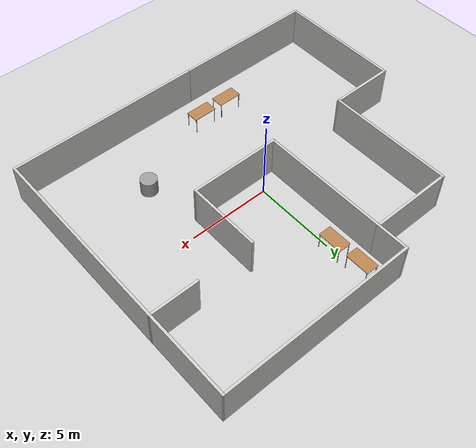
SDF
<sdf version="1.7">
 <world name="map1">
  <light name="sun" type="directional">
   <pose>0 0 10 0 -0 0</pose>
   <diffuse>0.8 0.8 0.8 1</diffuse>
   <specular>0.2 0.2 0.2 1</specular>
   <attenuation>
    <range>1000</range>
    <constant>0.9</constant>
    <linear>0.01</linear>
    <quadratic>0.001</quadratic>
   </attenuation>
   <direction>-0.5 0.1 -0.9</direction>
   <spot><inner_angle>0</inner_angle><outer_angle>0</outer_angle><falloff>0</falloff></spot>
  </light>
  <model name="ground_plane">
   <static>1</static>
   <link name="link">
    <collision name="collision">
     <geometry><plane><normal>0 0 1</normal><size>100 100</size></plane></geometry>
     <surface><friction><ode><mu>100</mu><mu2>50</mu2></ode></friction></surface>
    </collision>
    <visual name="visual">
     <cast_shadows>0</cast_shadows>
     <geometry><plane><normal>0 0 1</normal><size>100 100</size></plane></geometry>
     <material>
      <script><uri>file://media/materials/scripts/gazebo.material</uri><name>Gazebo/Grey</name></script>
     </material>
    </visual>
   </link>
  </model>
  <gravity>0 0 -9.8</gravity>
  <magnetic_field>6e-06 2.3e-05 -4.2e-05</magnetic_field>
  <atmosphere type="adiabatic"/>
  <physics type="ode">
   <max_step_size>0.001</max_step_size>
   <real_time_factor>1</real_time_factor>
   <real_time_update_rate>1000</real_time_update_rate>
  </physics>
  <scene><ambient>0.4 0.4 0.4 1</ambient><background>0.7 0.7 0.7 1</background><shadows>1</shadows></scene>
  <spherical_coordinates>
   <surface_model>EARTH_WGS84</surface_model>
   <latitude_deg>0</latitude_deg>
   <longitude_deg>0</longitude_deg>
   <elevation>0</elevation>
   <heading_deg>0</heading_deg>
  </spherical_coordinates>
  <model name="map1">
   <pose>0.068623 0.207395 0 0 -0 0</pose>
   <link name="Wall_17">
    <collision name="Wall_17_Collision">
     <geometry><box><size>12 0.15 2.5</size></box></geometry>
     <pose>0 0 1.25 0 -0 0</pose>
    </collision>
    <visual name="Wall_17_Visual">
     <pose>0 0 1.25 0 -0 0</pose>
     <geometry><box><size>12 0.15 2.5</size></box></geometry>
     <material>
      <script><uri>file://media/materials/scripts/gazebo.material</uri><name>Gazebo/CeilingTiled</name></script>
      <ambient>0.435294 0.796078 0.67451 1</ambient>
     </material>
     <meta><layer>0</layer></meta>
    </visual>
    <pose>4.42491 -8.52904 0 0 -0 0</pose>
   </link>
   <link name="Wall_18">
    <collision name="Wall_18_Collision">
     <geometry><box><size>12 0.15 2.5</size></box></geometry>
     <pose>0 0 1.25 0 -0 0</pose>
    </collision>
    <visual name="Wall_18_Visual">
     <pose>0 0 1.25 0 -0 0</pose>
     <geometry><box><size>12 0.15 2.5</size></box></geometry>
     <material>
      <script><uri>file://media/materials/scripts/gazebo.material</uri><name>Gazebo/CeilingTiled</name></script>
      <ambient>0.435294 0.796078 0.67451 1</ambient>
     </material>
     <meta><layer>0</layer></meta>
    </visual>
    <pose>10.3499 -2.60404 0 0 -0 1.5708</pose>
   </link>
   <link name="Wall_20">
    <collision name="Wall_20_Collision">
     <geometry><box><size>4.54601 0.15 2.5</size></box></geometry>
     <pose>0 0 1.25 0 -0 0</pose>
    </collision>
    <visual name="Wall_20_Visual">
     <pose>0 0 1.25 0 -0 0</pose>
     <geometry><box><size>4.54601 0.15 2.5</size></box></geometry>
     <material>
      <script><uri>file://media/materials/scripts/gazebo.material</uri><name>Gazebo/CeilingTiled</name></script>
      <ambient>0.435294 0.796078 0.67451 1</ambient>
     </material>
     <meta><layer>0</layer></meta>
    </visual>
    <pose>4.00566 1.12296 0 0 -0 -1.56818</pose>
   </link>
   <link name="Wall_21">
    <collision name="Wall_21_Collision">
     <geometry><box><size>5.67396 0.15 2.5</size></box></geometry>
     <pose>0 0 1.25 0 -0 0</pose>
    </collision>
    <visual name="Wall_21_Visual">
     <pose>0 0 1.25 0 -0 0</pose>
     <geometry><box><size>5.67396 0.15 2.5</size></box></geometry>
     <material>
      <script><uri>file://media/materials/scripts/gazebo.material</uri><name>Gazebo/CeilingTiled</name></script>
      <ambient>0.435294 0.796078 0.67451 1</ambient>
     </material>
     <meta><layer>0</layer></meta>
    </visual>
    <pose>1.24943 -1.06734 0 0 -0 -3.14022</pose>
   </link>
   <link name="Wall_28">
    <collision name="Wall_28_Collision">
     <geometry><box><size>9 0.15 2.5</size></box></geometry>
     <pose>0 0 1.25 0 -0 0</pose>
    </collision>
    <visual name="Wall_28_Visual">
     <pose>0 0 1.25 0 -0 0</pose>
     <geometry><box><size>9 0.15 2.5</size></box></geometry>
     <material>
      <script><uri>file://media/materials/scripts/gazebo.material</uri><name>Gazebo/CeilingTiled</name></script>
      <ambient>0.435294 0.796078 0.67451 1</ambient>
     </material>
     <meta><layer>0</layer></meta>
    </visual>
    <pose>-5.92509 -8.52904 0 0 -0 3.14159</pose>
   </link>
   <link name="Wall_29">
    <collision name="Wall_29_Collision">
     <geometry><box><size>7.75 0.15 2.5</size></box></geometry>
     <pose>0 0 1.25 0 -0 0</pose>
    </collision>
    <visual name="Wall_29_Visual">
     <pose>0 0 1.25 0 -0 0</pose>
     <geometry><box><size>7.75 0.15 2.5</size></box></geometry>
     <material>
      <script><uri>file://media/materials/scripts/gazebo.material</uri><name>Gazebo/CeilingTiled</name></script>
      <ambient>0.435294 0.796078 0.67451 1</ambient>
     </material>
     <meta><layer>0</layer></meta>
    </visual>
    <pose>-10.3501 -4.72904 0 0 -0 1.5708</pose>
   </link>
   <link name="Wall_30">
    <collision name="Wall_30_Collision">
     <geometry><box><size>4 0.15 2.5</size></box></geometry>
     <pose>0 0 1.25 0 -0 0</pose>
    </collision>
    <visual name="Wall_30_Visual">
     <pose>0 0 1.25 0 -0 0</pose>
     <geometry><box><size>4 0.15 2.5</size></box></geometry>
     <material>
      <script><uri>file://media/materials/scripts/gazebo.material</uri><name>Gazebo/CeilingTiled</name></script>
      <ambient>0.435294 0.796078 0.67451 1</ambient>
     </material>
     <meta><layer>0</layer></meta>
    </visual>
    <pose>-8.42509 -0.929037 0 0 -0 0</pose>
   </link>
   <link name="Wall_31">
    <collision name="Wall_31_Collision">
     <geometry><box><size>7.75772 0.15 2.5</size></box></geometry>
     <pose>0 0 1.25 0 -0 0</pose>
    </collision>
    <visual name="Wall_31_Visual">
     <pose>0 0 1.25 0 -0 0</pose>
     <geometry><box><size>7.75772 0.15 2.5</size></box></geometry>
     <material>
      <script><uri>file://media/materials/scripts/gazebo.material</uri><name>Gazebo/CeilingTiled</name></script>
      <ambient>0.435294 0.796078 0.67451 1</ambient>
     </material>
     <meta><layer>0</layer></meta>
    </visual>
    <pose>-6.49442 2.87474 0 0 -0 1.5693</pose>
   </link>
   <link name="Wall_32">
    <collision name="Wall_32_Collision">
     <geometry><box><size>5.1 0.15 2.5</size></box></geometry>
     <pose>0 0 1.25 0 -0 0</pose>
    </collision>
    <visual name="Wall_32_Visual">
     <pose>0 0 1.25 0 -0 0</pose>
     <geometry><box><size>5.1 0.15 2.5</size></box></geometry>
     <material>
      <script><uri>file://media/materials/scripts/gazebo.material</uri><name>Gazebo/CeilingTiled</name></script>
      <ambient>0.435294 0.796078 0.67451 1</ambient>
     </material>
     <meta><layer>0</layer></meta>
    </visual>
    <pose>-4.01375 6.67852 0 0 -0 0</pose>
   </link>
   <link name="Wall_34">
    <collision name="Wall_34_Collision">
     <geometry><box><size>7.9 0.15 2.5</size></box></geometry>
     <pose>0 0 1.25 0 -0 0</pose>
    </collision>
    <visual name="Wall_34_Visual">
     <pose>0 0 1.25 0 -0 0</pose>
     <geometry><box><size>7.9 0.15 2.5</size></box></geometry>
     <material>
      <script><uri>file://media/materials/scripts/gazebo.material</uri><name>Gazebo/CeilingTiled</name></script>
      <ambient>0.435294 0.796078 0.67451 1</ambient>
     </material>
     <meta><layer>0</layer></meta>
    </visual>
    <pose>-1.51255 2.80386 0 0 -0 1.5708</pose>
   </link>
   <link name="Wall_36">
    <collision name="Wall_36_Collision">
     <geometry><box><size>2 0.15 2.5</size></box></geometry>
     <pose>0 0 1.25 0 -0 0</pose>
    </collision>
    <visual name="Wall_36_Visual">
     <pose>0 0 1.25 0 -0 0</pose>
     <geometry><box><size>2 0.15 2.5</size></box></geometry>
     <material>
      <script><uri>file://media/materials/scripts/gazebo.material</uri><name>Gazebo/CeilingTiled</name></script>
      <ambient>0.435294 0.796078 0.67451 1</ambient>
     </material>
     <meta><layer>0</layer></meta>
    </visual>
    <pose>-1.51255 7.60386 0 0 -0 1.5708</pose>
   </link>
   <link name="Wall_37">
    <collision name="Wall_37_Collision">
     <geometry><box><size>12 0.15 2.5</size></box></geometry>
     <pose>0 0 1.25 0 -0 0</pose>
    </collision>
    <visual name="Wall_37_Visual">
     <pose>0 0 1.25 0 -0 0</pose>
     <geometry><box><size>12 0.15 2.5</size></box></geometry>
     <material>
      <script><uri>file://media/materials/scripts/gazebo.material</uri><name>Gazebo/CeilingTiled</name></script>
      <ambient>0.435294 0.796078 0.67451 1</ambient>
     </material>
     <meta><layer>0</layer></meta>
    </visual>
    <pose>4.41245 8.52886 0 0 -0 0</pose>
   </link>
   <link name="Wall_38">
    <collision name="Wall_38_Collision">
     <geometry><box><size>5.35791 0.15 2.5</size></box></geometry>
     <pose>0 0 1.25 0 -0 0</pose>
    </collision>
    <visual name="Wall_38_Visual">
     <pose>0 0 1.25 0 -0 0</pose>
     <geometry><box><size>5.35791 0.15 2.5</size></box></geometry>
     <material>
      <script><uri>file://media/materials/scripts/gazebo.material</uri><name>Gazebo/CeilingTiled</name></script>
      <ambient>0.435294 0.796078 0.67451 1</ambient>
     </material>
     <meta><layer>0</layer></meta>
    </visual>
    <pose>10.3437 5.92491 0 0 -0 -1.5684</pose>
   </link>
   <link name="Wall_39">
    <collision name="Wall_39_Collision">
     <geometry><box><size>3 0.15 2.5</size></box></geometry>
     <pose>0 0 1.25 0 -0 0</pose>
    </collision>
    <visual name="Wall_39_Visual">
     <pose>0 0 1.25 0 -0 0</pose>
     <geometry><box><size>3 0.15 2.5</size></box></geometry>
     <material>
      <script><uri>file://media/materials/scripts/gazebo.material</uri><name>Gazebo/CeilingTiled</name></script>
      <ambient>0.435294 0.796078 0.67451 1</ambient>
     </material>
     <meta><layer>0</layer></meta>
    </visual>
    <pose>8.92491 3.32096 0 0 -0 3.14159</pose>
   </link>
   <static>1</static>
  </model>
  <model name="bookshelf">
   <static>1</static>
   <link name="link">
    <inertial><mass>1</mass></inertial>
    <collision name="back">
     <pose>0 0.005 0.6 0 -0 0</pose>
     <geometry><box><size>0.9 0.01 1.2</size></box></geometry>
    </collision>
    <visual name="visual1">
     <pose>0 0.005 0.6 0 -0 0</pose>
     <geometry><box><size>0.9 0.01 1.2</size></box></geometry>
     <material>
      <script><uri>file://media/materials/scripts/gazebo.material</uri><name>Gazebo/Wood</name></script>
     </material>
    </visual>
    <collision name="left_side">
     <pose>0.45 -0.195 0.6 0 -0 0</pose>
     <geometry><box><size>0.02 0.4 1.2</size></box></geometry>
    </collision>
    <visual name="visual2">
     <pose>0.45 -0.195 0.6 0 -0 0</pose>
     <geometry><box><size>0.02 0.4 1.2</size></box></geometry>
     <material>
      <script><uri>file://media/materials/scripts/gazebo.material</uri><name>Gazebo/Wood</name></script>
     </material>
    </visual>
    <collision name="right_side">
     <pose>-0.45 -0.195 0.6 0 -0 0</pose>
     <geometry><box><size>0.02 0.4 1.2</size></box></geometry>
    </collision>
    <visual name="visual3">
     <pose>-0.45 -0.195 0.6 0 -0 0</pose>
     <geometry><box><size>0.02 0.4 1.2</size></box></geometry>
     <material>
      <script><uri>file://media/materials/scripts/gazebo.material</uri><name>Gazebo/Wood</name></script>
     </material>
    </visual>
    <collision name="bottom">
     <pose>0 -0.195 0.03 0 -0 0</pose>
     <geometry><box><size>0.88 0.4 0.06</size></box></geometry>
    </collision>
    <visual name="visual4">
     <pose>0 -0.195 0.03 0 -0 0</pose>
     <geometry><box><size>0.88 0.4 0.06</size></box></geometry>
     <material>
      <script><uri>file://media/materials/scripts/gazebo.material</uri><name>Gazebo/Wood</name></script>
     </material>
    </visual>
    <collision name="top">
     <pose>0 -0.195 1.19 0 -0 0</pose>
     <geometry><box><size>0.88 0.4 0.02</size></box></geometry>
    </collision>
    <visual name="visual5">
     <pose>0 -0.195 1.19 0 -0 0</pose>
     <geometry><box><size>0.88 0.4 0.02</size></box></geometry>
     <material>
      <script><uri>file://media/materials/scripts/gazebo.material</uri><name>Gazebo/Wood</name></script>
     </material>
    </visual>
    <collision name="low_shelf">
     <pose>0 -0.195 0.43 0 -0 0</pose>
     <geometry><box><size>0.88 0.4 0.02</size></box></geometry>
    </collision>
    <visual name="visual6">
     <pose>0 -0.195 0.43 0 -0 0</pose>
     <geometry><box><size>0.88 0.4 0.02</size></box></geometry>
     <material>
      <script><uri>file://media/materials/scripts/gazebo.material</uri><name>Gazebo/Wood</name></script>
     </material>
    </visual>
    <collision name="high_shelf">
     <pose>0 -0.195 0.8 0 -0 0</pose>
     <geometry><box><size>0.88 0.4 0.02</size></box></geometry>
    </collision>
    <visual name="visual7">
     <pose>0 -0.195 0.8 0 -0 0</pose>
     <geometry><box><size>0.88 0.4 0.02</size></box></geometry>
     <material>
      <script><uri>file://media/materials/scripts/gazebo.material</uri><name>Gazebo/Wood</name></script>
     </material>
    </visual>
   </link>
   <pose>-5.38403 6.82344 0 0 -0 0</pose>
  </model>
  <model name="bookshelf_clone">
   <static>1</static>
   <link name="link">
    <inertial><mass>1</mass></inertial>
    <collision name="back">
     <pose>0 0.005 0.6 0 -0 0</pose>
     <geometry><box><size>0.9 0.01 1.2</size></box></geometry>
    </collision>
    <visual name="visual1">
     <pose>0 0.005 0.6 0 -0 0</pose>
     <geometry><box><size>0.9 0.01 1.2</size></box></geometry>
     <material>
      <script><uri>file://media/materials/scripts/gazebo.material</uri><name>Gazebo/Wood</name></script>
     </material>
    </visual>
    <collision name="left_side">
     <pose>0.45 -0.195 0.6 0 -0 0</pose>
     <geometry><box><size>0.02 0.4 1.2</size></box></geometry>
    </collision>
    <visual name="visual2">
     <pose>0.45 -0.195 0.6 0 -0 0</pose>
     <geometry><box><size>0.02 0.4 1.2</size></box></geometry>
     <material>
      <script><uri>file://media/materials/scripts/gazebo.material</uri><name>Gazebo/Wood</name></script>
     </material>
    </visual>
    <collision name="right_side">
     <pose>-0.45 -0.195 0.6 0 -0 0</pose>
     <geometry><box><size>0.02 0.4 1.2</size></box></geometry>
    </collision>
    <visual name="visual3">
     <pose>-0.45 -0.195 0.6 0 -0 0</pose>
     <geometry><box><size>0.02 0.4 1.2</size></box></geometry>
     <material>
      <script><uri>file://media/materials/scripts/gazebo.material</uri><name>Gazebo/Wood</name></script>
     </material>
    </visual>
    <collision name="bottom">
     <pose>0 -0.195 0.03 0 -0 0</pose>
     <geometry><box><size>0.88 0.4 0.06</size></box></geometry>
    </collision>
    <visual name="visual4">
     <pose>0 -0.195 0.03 0 -0 0</pose>
     <geometry><box><size>0.88 0.4 0.06</size></box></geometry>
     <material>
      <script><uri>file://media/materials/scripts/gazebo.material</uri><name>Gazebo/Wood</name></script>
     </material>
    </visual>
    <collision name="top">
     <pose>0 -0.195 1.19 0 -0 0</pose>
     <geometry><box><size>0.88 0.4 0.02</size></box></geometry>
    </collision>
    <visual name="visual5">
     <pose>0 -0.195 1.19 0 -0 0</pose>
     <geometry><box><size>0.88 0.4 0.02</size></box></geometry>
     <material>
      <script><uri>file://media/materials/scripts/gazebo.material</uri><name>Gazebo/Wood</name></script>
     </material>
    </visual>
    <collision name="low_shelf">
     <pose>0 -0.195 0.43 0 -0 0</pose>
     <geometry><box><size>0.88 0.4 0.02</size></box></geometry>
    </collision>
    <visual name="visual6">
     <pose>0 -0.195 0.43 0 -0 0</pose>
     <geometry><box><size>0.88 0.4 0.02</size></box></geometry>
     <material>
      <script><uri>file://media/materials/scripts/gazebo.material</uri><name>Gazebo/Wood</name></script>
     </material>
    </visual>
    <collision name="high_shelf">
     <pose>0 -0.195 0.8 0 -0 0</pose>
     <geometry><box><size>0.88 0.4 0.02</size></box></geometry>
    </collision>
    <visual name="visual7">
     <pose>0 -0.195 0.8 0 -0 0</pose>
     <geometry><box><size>0.88 0.4 0.02</size></box></geometry>
     <material>
      <script><uri>file://media/materials/scripts/gazebo.material</uri><name>Gazebo/Wood</name></script>
     </material>
    </visual>
   </link>
   <pose>-4.4672 6.81996 0 0 -0 0</pose>
  </model>
  <model name="bookshelf_clone_0">
   <static>1</static>
   <link name="link">
    <inertial><mass>1</mass></inertial>
    <collision name="back">
     <pose>0 0.005 0.6 0 -0 0</pose>
     <geometry><box><size>0.9 0.01 1.2</size></box></geometry>
    </collision>
    <visual name="visual1">
     <pose>0 0.005 0.6 0 -0 0</pose>
     <geometry><box><size>0.9 0.01 1.2</size></box></geometry>
     <material>
      <script><uri>file://media/materials/scripts/gazebo.material</uri><name>Gazebo/Wood</name></script>
     </material>
    </visual>
    <collision name="left_side">
     <pose>0.45 -0.195 0.6 0 -0 0</pose>
     <geometry><box><size>0.02 0.4 1.2</size></box></geometry>
    </collision>
    <visual name="visual2">
     <pose>0.45 -0.195 0.6 0 -0 0</pose>
     <geometry><box><size>0.02 0.4 1.2</size></box></geometry>
     <material>
      <script><uri>file://media/materials/scripts/gazebo.material</uri><name>Gazebo/Wood</name></script>
     </material>
    </visual>
    <collision name="right_side">
     <pose>-0.45 -0.195 0.6 0 -0 0</pose>
     <geometry><box><size>0.02 0.4 1.2</size></box></geometry>
    </collision>
    <visual name="visual3">
     <pose>-0.45 -0.195 0.6 0 -0 0</pose>
     <geometry><box><size>0.02 0.4 1.2</size></box></geometry>
     <material>
      <script><uri>file://media/materials/scripts/gazebo.material</uri><name>Gazebo/Wood</name></script>
     </material>
    </visual>
    <collision name="bottom">
     <pose>0 -0.195 0.03 0 -0 0</pose>
     <geometry><box><size>0.88 0.4 0.06</size></box></geometry>
    </collision>
    <visual name="visual4">
     <pose>0 -0.195 0.03 0 -0 0</pose>
     <geometry><box><size>0.88 0.4 0.06</size></box></geometry>
     <material>
      <script><uri>file://media/materials/scripts/gazebo.material</uri><name>Gazebo/Wood</name></script>
     </material>
    </visual>
    <collision name="top">
     <pose>0 -0.195 1.19 0 -0 0</pose>
     <geometry><box><size>0.88 0.4 0.02</size></box></geometry>
    </collision>
    <visual name="visual5">
     <pose>0 -0.195 1.19 0 -0 0</pose>
     <geometry><box><size>0.88 0.4 0.02</size></box></geometry>
     <material>
      <script><uri>file://media/materials/scripts/gazebo.material</uri><name>Gazebo/Wood</name></script>
     </material>
    </visual>
    <collision name="low_shelf">
     <pose>0 -0.195 0.43 0 -0 0</pose>
     <geometry><box><size>0.88 0.4 0.02</size></box></geometry>
    </collision>
    <visual name="visual6">
     <pose>0 -0.195 0.43 0 -0 0</pose>
     <geometry><box><size>0.88 0.4 0.02</size></box></geometry>
     <material>
      <script><uri>file://media/materials/scripts/gazebo.material</uri><name>Gazebo/Wood</name></script>
     </material>
    </visual>
    <collision name="high_shelf">
     <pose>0 -0.195 0.8 0 -0 0</pose>
     <geometry><box><size>0.88 0.4 0.02</size></box></geometry>
    </collision>
    <visual name="visual7">
     <pose>0 -0.195 0.8 0 -0 0</pose>
     <geometry><box><size>0.88 0.4 0.02</size></box></geometry>
     <material>
      <script><uri>file://media/materials/scripts/gazebo.material</uri><name>Gazebo/Wood</name></script>
     </material>
    </visual>
   </link>
   <pose>-3.62588 6.82278 0 0 -0 0</pose>
  </model>
  <model name="table">
   <static>1</static>
   <link name="link">
    <collision name="surface">
     <pose>0 0 1 0 -0 0</pose>
     <geometry><box><size>1.5 0.8 0.03</size></box></geometry>
     <surface><friction><ode><mu>0.6</mu><mu2>0.6</mu2></ode></friction></surface>
    </collision>
    <visual name="visual1">
     <pose>0 0 1 0 -0 0</pose>
     <geometry><box><size>1.5 0.8 0.03</size></box></geometry>
     <material>
      <script><uri>file://media/materials/scripts/gazebo.material</uri><name>Gazebo/Wood</name></script>
     </material>
    </visual>
    <collision name="front_left_leg">
     <pose>0.68 0.38 0.5 0 -0 0</pose>
     <geometry><cylinder><radius>0.02</radius><length>1</length></cylinder></geometry>
    </collision>
    <visual name="front_left_leg">
     <pose>0.68 0.38 0.5 0 -0 0</pose>
     <geometry><cylinder><radius>0.02</radius><length>1</length></cylinder></geometry>
     <material>
      <script><uri>file://media/materials/scripts/gazebo.material</uri><name>Gazebo/Grey</name></script>
     </material>
    </visual>
    <collision name="front_right_leg">
     <pose>0.68 -0.38 0.5 0 -0 0</pose>
     <geometry><cylinder><radius>0.02</radius><length>1</length></cylinder></geometry>
    </collision>
    <visual name="front_right_leg">
     <pose>0.68 -0.38 0.5 0 -0 0</pose>
     <geometry><cylinder><radius>0.02</radius><length>1</length></cylinder></geometry>
     <material>
      <script><uri>file://media/materials/scripts/gazebo.material</uri><name>Gazebo/Grey</name></script>
     </material>
    </visual>
    <collision name="back_right_leg">
     <pose>-0.68 -0.38 0.5 0 -0 0</pose>
     <geometry><cylinder><radius>0.02</radius><length>1</length></cylinder></geometry>
    </collision>
    <visual name="back_right_leg">
     <pose>-0.68 -0.38 0.5 0 -0 0</pose>
     <geometry><cylinder><radius>0.02</radius><length>1</length></cylinder></geometry>
     <material>
      <script><uri>file://media/materials/scripts/gazebo.material</uri><name>Gazebo/Grey</name></script>
     </material>
    </visual>
    <collision name="back_left_leg">
     <pose>-0.68 0.38 0.5 0 -0 0</pose>
     <geometry><cylinder><radius>0.02</radius><length>1</length></cylinder></geometry>
    </collision>
    <visual name="back_left_leg">
     <pose>-0.68 0.38 0.5 0 -0 0</pose>
     <geometry><cylinder><radius>0.02</radius><length>1</length></cylinder></geometry>
     <material>
      <script><uri>file://media/materials/scripts/gazebo.material</uri><name>Gazebo/Grey</name></script>
     </material>
    </visual>
   </link>
   <pose>-0.126599 7.24532 0 0 0 -1.57065</pose>
  </model>
  <model name="table_clone">
   <static>1</static>
   <link name="link">
    <collision name="surface">
     <pose>0 0 1 0 -0 0</pose>
     <geometry><box><size>1.5 0.8 0.03</size></box></geometry>
     <surface><friction><ode><mu>0.6</mu><mu2>0.6</mu2></ode></friction></surface>
    </collision>
    <visual name="visual1">
     <pose>0 0 1 0 -0 0</pose>
     <geometry><box><size>1.5 0.8 0.03</size></box></geometry>
     <material>
      <script><uri>file://media/materials/scripts/gazebo.material</uri><name>Gazebo/Wood</name></script>
     </material>
    </visual>
    <collision name="front_left_leg">
     <pose>0.68 0.38 0.5 0 -0 0</pose>
     <geometry><cylinder><radius>0.02</radius><length>1</length></cylinder></geometry>
    </collision>
    <visual name="front_left_leg">
     <pose>0.68 0.38 0.5 0 -0 0</pose>
     <geometry><cylinder><radius>0.02</radius><length>1</length></cylinder></geometry>
     <material>
      <script><uri>file://media/materials/scripts/gazebo.material</uri><name>Gazebo/Grey</name></script>
     </material>
    </visual>
    <collision name="front_right_leg">
     <pose>0.68 -0.38 0.5 0 -0 0</pose>
     <geometry><cylinder><radius>0.02</radius><length>1</length></cylinder></geometry>
    </collision>
    <visual name="front_right_leg">
     <pose>0.68 -0.38 0.5 0 -0 0</pose>
     <geometry><cylinder><radius>0.02</radius><length>1</length></cylinder></geometry>
     <material>
      <script><uri>file://media/materials/scripts/gazebo.material</uri><name>Gazebo/Grey</name></script>
     </material>
    </visual>
    <collision name="back_right_leg">
     <pose>-0.68 -0.38 0.5 0 -0 0</pose>
     <geometry><cylinder><radius>0.02</radius><length>1</length></cylinder></geometry>
    </collision>
    <visual name="back_right_leg">
     <pose>-0.68 -0.38 0.5 0 -0 0</pose>
     <geometry><cylinder><radius>0.02</radius><length>1</length></cylinder></geometry>
     <material>
      <script><uri>file://media/materials/scripts/gazebo.material</uri><name>Gazebo/Grey</name></script>
     </material>
    </visual>
    <collision name="back_left_leg">
     <pose>-0.68 0.38 0.5 0 -0 0</pose>
     <geometry><cylinder><radius>0.02</radius><length>1</length></cylinder></geometry>
    </collision>
    <visual name="back_left_leg">
     <pose>-0.68 0.38 0.5 0 -0 0</pose>
     <geometry><cylinder><radius>0.02</radius><length>1</length></cylinder></geometry>
     <material>
      <script><uri>file://media/materials/scripts/gazebo.material</uri><name>Gazebo/Grey</name></script>
     </material>
    </visual>
   </link>
   <pose>-0.046616 5.3871 0 0 0 -1.57065</pose>
  </model>
  <model name="table_clone_clone">
   <static>1</static>
   <link name="link">
    <collision name="surface">
     <pose>0 0 1 0 -0 0</pose>
     <geometry><box><size>1.5 0.8 0.03</size></box></geometry>
     <surface><friction><ode><mu>0.6</mu><mu2>0.6</mu2></ode></friction></surface>
    </collision>
    <visual name="visual1">
     <pose>0 0 1 0 -0 0</pose>
     <geometry><box><size>1.5 0.8 0.03</size></box></geometry>
     <material>
      <script><uri>file://media/materials/scripts/gazebo.material</uri><name>Gazebo/Wood</name></script>
     </material>
    </visual>
    <collision name="front_left_leg">
     <pose>0.68 0.38 0.5 0 -0 0</pose>
     <geometry><cylinder><radius>0.02</radius><length>1</length></cylinder></geometry>
    </collision>
    <visual name="front_left_leg">
     <pose>0.68 0.38 0.5 0 -0 0</pose>
     <geometry><cylinder><radius>0.02</radius><length>1</length></cylinder></geometry>
     <material>
      <script><uri>file://media/materials/scripts/gazebo.material</uri><name>Gazebo/Grey</name></script>
     </material>
    </visual>
    <collision name="front_right_leg">
     <pose>0.68 -0.38 0.5 0 -0 0</pose>
     <geometry><cylinder><radius>0.02</radius><length>1</length></cylinder></geometry>
    </collision>
    <visual name="front_right_leg">
     <pose>0.68 -0.38 0.5 0 -0 0</pose>
     <geometry><cylinder><radius>0.02</radius><length>1</length></cylinder></geometry>
     <material>
      <script><uri>file://media/materials/scripts/gazebo.material</uri><name>Gazebo/Grey</name></script>
     </material>
    </visual>
    <collision name="back_right_leg">
     <pose>-0.68 -0.38 0.5 0 -0 0</pose>
     <geometry><cylinder><radius>0.02</radius><length>1</length></cylinder></geometry>
    </collision>
    <visual name="back_right_leg">
     <pose>-0.68 -0.38 0.5 0 -0 0</pose>
     <geometry><cylinder><radius>0.02</radius><length>1</length></cylinder></geometry>
     <material>
      <script><uri>file://media/materials/scripts/gazebo.material</uri><name>Gazebo/Grey</name></script>
     </material>
    </visual>
    <collision name="back_left_leg">
     <pose>-0.68 0.38 0.5 0 -0 0</pose>
     <geometry><cylinder><radius>0.02</radius><length>1</length></cylinder></geometry>
    </collision>
    <visual name="back_left_leg">
     <pose>-0.68 0.38 0.5 0 -0 0</pose>
     <geometry><cylinder><radius>0.02</radius><length>1</length></cylinder></geometry>
     <material>
      <script><uri>file://media/materials/scripts/gazebo.material</uri><name>Gazebo/Grey</name></script>
     </material>
    </visual>
   </link>
   <pose>-2.74152 -6.37934 0 0 0 -3.14142</pose>
  </model>
  <model name="table_clone_clone_clone">
   <static>1</static>
   <link name="link">
    <collision name="surface">
     <pose>0 0 1 0 -0 0</pose>
     <geometry><box><size>1.5 0.8 0.03</size></box></geometry>
     <surface><friction><ode><mu>0.6</mu><mu2>0.6</mu2></ode></friction></surface>
    </collision>
    <visual name="visual1">
     <pose>0 0 1 0 -0 0</pose>
     <geometry><box><size>1.5 0.8 0.03</size></box></geometry>
     <material>
      <script><uri>file://media/materials/scripts/gazebo.material</uri><name>Gazebo/Wood</name></script>
     </material>
    </visual>
    <collision name="front_left_leg">
     <pose>0.68 0.38 0.5 0 -0 0</pose>
     <geometry><cylinder><radius>0.02</radius><length>1</length></cylinder></geometry>
    </collision>
    <visual name="front_left_leg">
     <pose>0.68 0.38 0.5 0 -0 0</pose>
     <geometry><cylinder><radius>0.02</radius><length>1</length></cylinder></geometry>
     <material>
      <script><uri>file://media/materials/scripts/gazebo.material</uri><name>Gazebo/Grey</name></script>
     </material>
    </visual>
    <collision name="front_right_leg">
     <pose>0.68 -0.38 0.5 0 -0 0</pose>
     <geometry><cylinder><radius>0.02</radius><length>1</length></cylinder></geometry>
    </collision>
    <visual name="front_right_leg">
     <pose>0.68 -0.38 0.5 0 -0 0</pose>
     <geometry><cylinder><radius>0.02</radius><length>1</length></cylinder></geometry>
     <material>
      <script><uri>file://media/materials/scripts/gazebo.material</uri><name>Gazebo/Grey</name></script>
     </material>
    </visual>
    <collision name="back_right_leg">
     <pose>-0.68 -0.38 0.5 0 -0 0</pose>
     <geometry><cylinder><radius>0.02</radius><length>1</length></cylinder></geometry>
    </collision>
    <visual name="back_right_leg">
     <pose>-0.68 -0.38 0.5 0 -0 0</pose>
     <geometry><cylinder><radius>0.02</radius><length>1</length></cylinder></geometry>
     <material>
      <script><uri>file://media/materials/scripts/gazebo.material</uri><name>Gazebo/Grey</name></script>
     </material>
    </visual>
    <collision name="back_left_leg">
     <pose>-0.68 0.38 0.5 0 -0 0</pose>
     <geometry><cylinder><radius>0.02</radius><length>1</length></cylinder></geometry>
    </collision>
    <visual name="back_left_leg">
     <pose>-0.68 0.38 0.5 0 -0 0</pose>
     <geometry><cylinder><radius>0.02</radius><length>1</length></cylinder></geometry>
     <material>
      <script><uri>file://media/materials/scripts/gazebo.material</uri><name>Gazebo/Grey</name></script>
     </material>
    </visual>
   </link>
   <pose>-0.816992 -6.37549 0 0 0 -3.14142</pose>
  </model>
  <model name="unit_cylinder">
   <pose>4.75682 -4.20097 0.499997 3e-06 4e-06 -0</pose>
   <link name="link">
    <inertial>
     <mass>1</mass>
     <inertia><ixx>0.145833</ixx><ixy>0</ixy><ixz>0</ixz><iyy>0.145833</iyy><iyz>0</iyz><izz>0.125</izz></inertia>
    </inertial>
    <collision name="collision">
     <geometry><cylinder><radius>0.5</radius><length>1</length></cylinder></geometry>
    </collision>
    <visual name="visual">
     <geometry><cylinder><radius>0.5</radius><length>1</length></cylinder></geometry>
     <material>
      <script><name>Gazebo/Grey</name><uri>file://media/materials/scripts/gazebo.material</uri></script>
     </material>
    </visual>
   </link>
  </model>
 </world>
</sdf>
